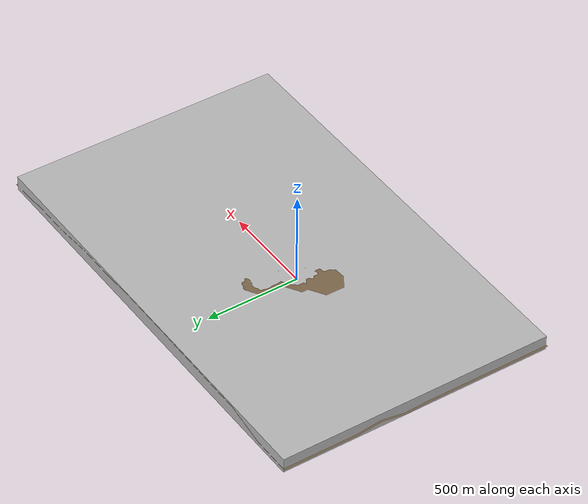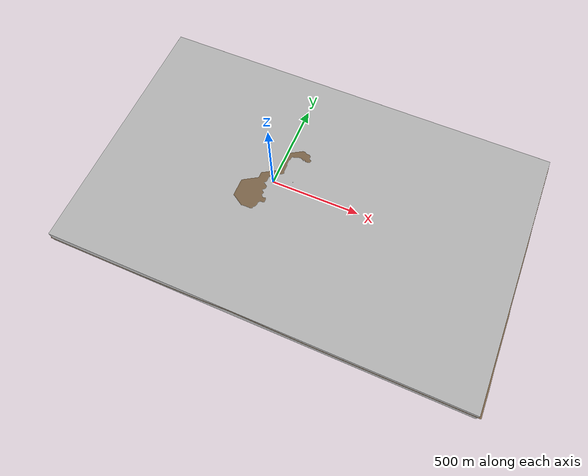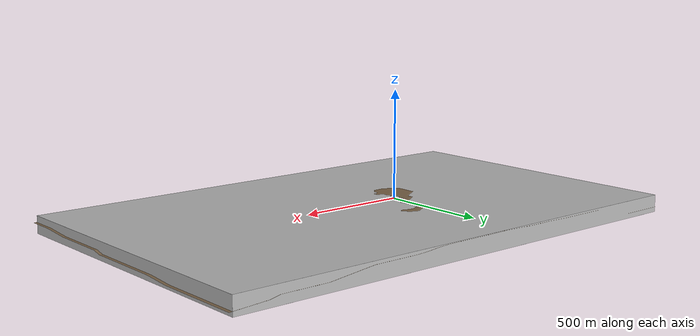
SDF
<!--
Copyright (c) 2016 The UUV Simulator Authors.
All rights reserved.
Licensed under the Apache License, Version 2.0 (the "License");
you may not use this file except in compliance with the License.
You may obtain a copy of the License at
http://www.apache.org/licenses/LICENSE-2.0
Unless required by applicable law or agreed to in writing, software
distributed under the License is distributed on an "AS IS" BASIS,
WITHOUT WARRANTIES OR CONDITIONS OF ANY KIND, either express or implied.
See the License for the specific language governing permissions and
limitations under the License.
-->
<?xml version="1.0" ?>
<sdf version="1.5">
  <model name="mulkholmen_terrain">
    <static>true</static>
    <link name="link">
      <collision name="seabed">
        <pose>0 0 0 0 0 0</pose>
        <geometry>
          <mesh>
            <uri>model://munkholmen_seabed/meshes/seabed.dae</uri>
            <scale>1.0 1.0 1.0</scale>
          </mesh>
        </geometry>
      </collision>

      <visual name="seabed">
        <cast_shadows>true</cast_shadows>
        <pose>0 0 0 0 0 0</pose>
        <geometry>
          <mesh>
            <scale>1.0 1.0 1.0</scale>
            <uri>model://munkholmen_seabed/meshes/seabed.dae</uri>
          </mesh>
        </geometry>
        <material>
          <script>
            <uri>file://Media/materials/scripts/sand.material</uri>
            <name>UUVSimulator/SandAndStones</name>
          </script>
        </material>
      </visual>
    </link>

    <link name="ocean_link">
      <visual name="surface">
        <pose>207.555145 -12.266886 0.0 0 0 0</pose>
        <geometry>
          <box>
            <size>2361.757812 1474.349 0.1</size>
          </box>
        </geometry>
        <material>
          <script>
            <uri>file://Media/materials/scripts/water.material</uri>
            <name>UUVSimulator/StaticWater</name>
          </script>
        </material>
      </visual>

      <visual name="bottom">
        <pose>207.555145 -12.266886 -80.0 0 0 0</pose>
        <geometry>
          <box>
            <size>2361.757812 1474.349 0.1</size>
          </box>
        </geometry>
        <material>
          <script>
            <uri>file://Media/materials/scripts/water.material</uri>
            <name>UUVSimulator/SeaWall</name>
          </script>
        </material>
      </visual>

      <visual name="north_wall">
        <pose>207.555145 724.907614 -40.0 0 0 0</pose>
        <geometry>
          <box>
            <size>2361.757812 0.1 80</size>
          </box>
        </geometry>
        <material>
          <script>
            <uri>file://Media/materials/scripts/water.material</uri>
            <name>UUVSimulator/SeaWall</name>
          </script>
        </material>
      </visual>

      <visual name="south_wall">
        <pose>207.555145 -749.441386 -40.0 0 0 0</pose>
        <geometry>
          <box>
            <size>2361.757812 0.1 80</size>
          </box>
        </geometry>
        <material>
          <script>
            <uri>file://Media/materials/scripts/water.material</uri>
            <name>UUVSimulator/SeaWall</name>
          </script>
        </material>
      </visual>

      <visual name="east_wall">
        <pose>1388.434051 -12.266886 -40.0 0 0 0</pose>
        <geometry>
          <box>
            <size>0.1 1474.349 80</size>
          </box>
        </geometry>
        <material>
          <script>
            <uri>file://Media/materials/scripts/water.material</uri>
            <name>UUVSimulator/SeaWall</name>
          </script>
        </material>
      </visual>

      <visual name="west_wall">
        <pose>-973.323761 -12.266886 -40.0 0 0 0</pose>
        <geometry>
          <box>
            <size>0.1 1474.349 80</size>
          </box>
        </geometry>
        <material>
          <script>
            <uri>file://Media/materials/scripts/water.material</uri>
            <name>UUVSimulator/SeaWall</name>
          </script>
        </material>
      </visual>
    </link>
  </model>
</sdf>
